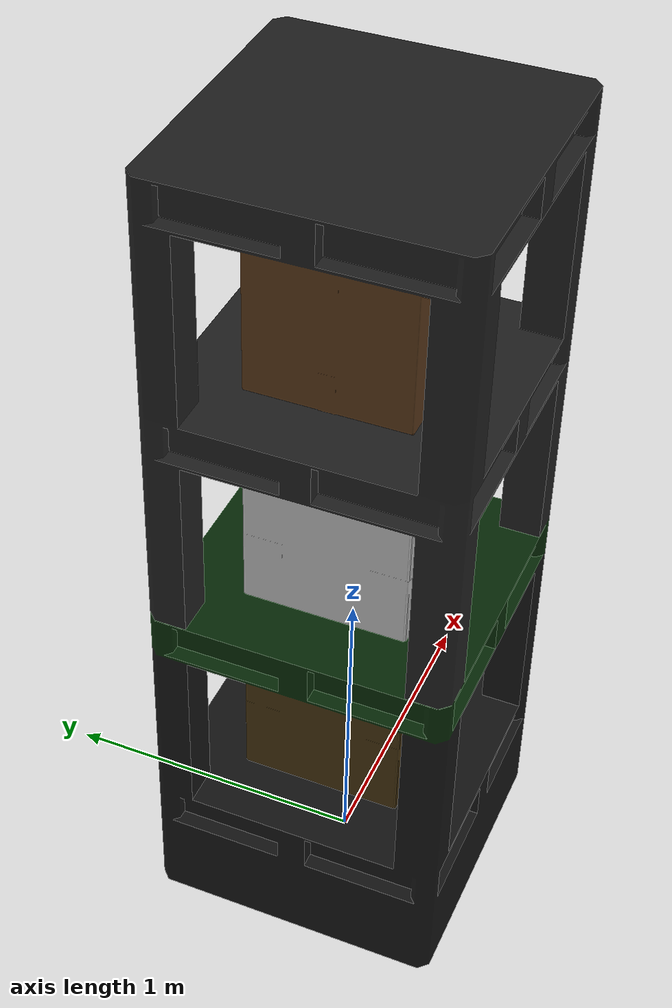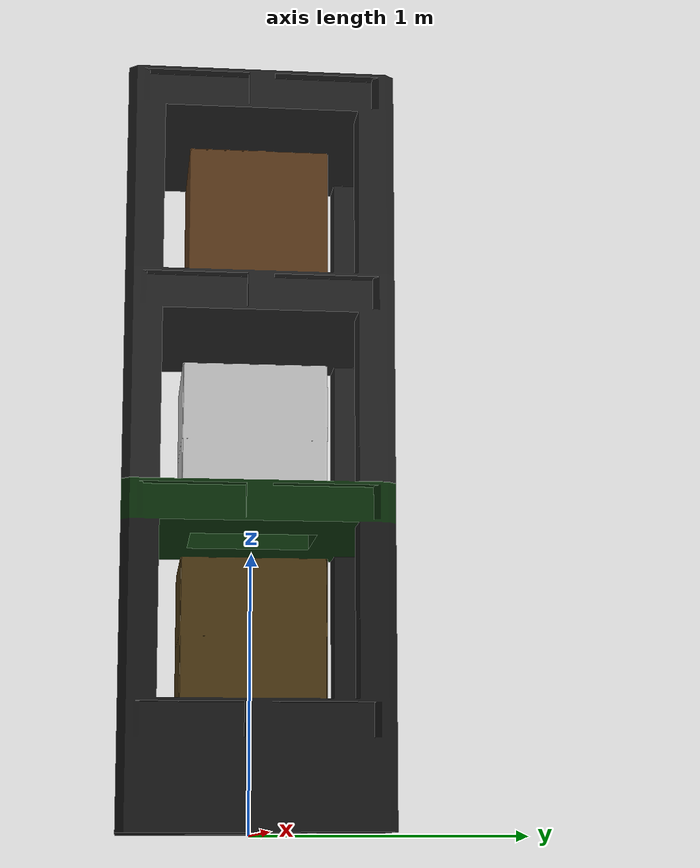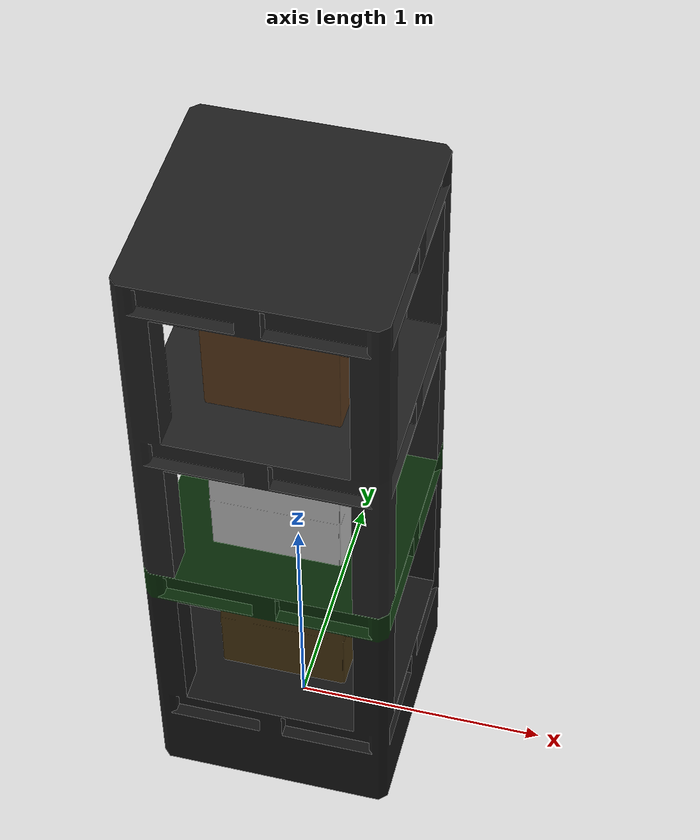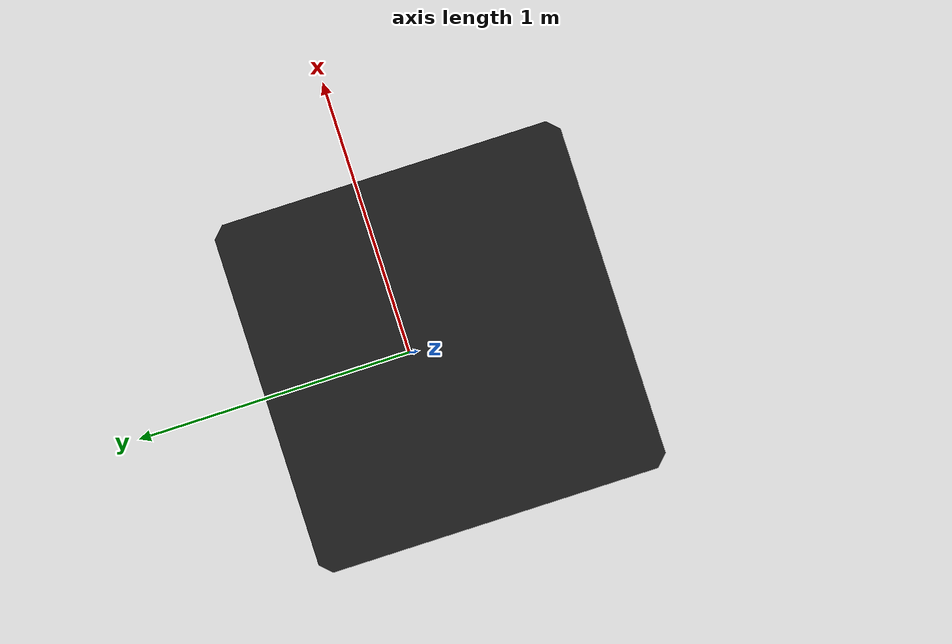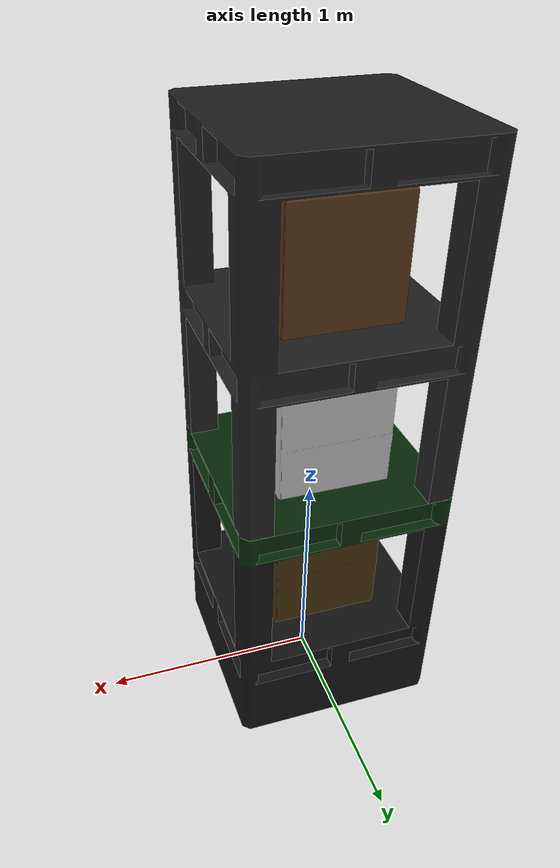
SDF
<?xml version="1.0" ?>
<sdf version="1.6">
  <model name="three_palette_big_new">
    <link name="My_map">
      <inertial>
        <mass>0.1</mass>
      </inertial>
      <collision name="collision">
        <geometry>
          <mesh>
            <uri>model://three_palette_big_new/meshes/three_palette_big_new.dae</uri>
            <scale>0.01 0.01 0.01</scale>
          </mesh>
        </geometry>
      </collision>
      <visual name="map_visual">
        <geometry>
          <mesh>
            <uri>model://three_palette_big_new/meshes/three_palette_big_new.dae</uri>
            <scale>0.01 0.01 0.01</scale>
          </mesh>
        </geometry>
      </visual>
    </link>
  </model>
</sdf>
